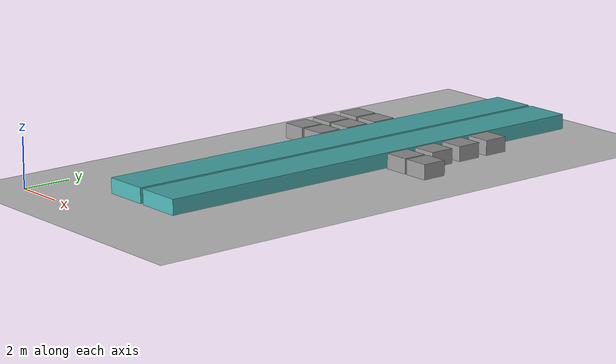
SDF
<sdf version="1.6">
 <world name="default">
  <model name="ground_plane">
   <static>1</static>
   <link name="link">
    <collision name="collision">
     <geometry><plane><normal>0 0 1</normal><size>100 100</size></plane></geometry>
     <surface>
      <contact><collide_bitmask>65535</collide_bitmask></contact>
      <friction><ode><mu>100</mu><mu2>50</mu2></ode></friction>
     </surface>
    </collision>
    <visual name="visual">
     <cast_shadows>0</cast_shadows>
     <geometry><plane><normal>0 0 1</normal><size>100 100</size></plane></geometry>
     <material>
      <script><uri>file://media/materials/scripts/gazebo.material</uri><name>Gazebo/Grey</name></script>
     </material>
    </visual>
   </link>
  </model>
  <model name="Estufa-objetos">
   <link name="link_0_clone_3_clone_clone">
    <inertial>
     <mass>1</mass>
     <inertia>
      <ixx>0.166667</ixx>
      <ixy>0</ixy>
      <ixz>0</ixz>
      <iyy>0.166667</iyy>
      <iyz>0</iyz>
      <izz>0.166667</izz>
     </inertia>
    </inertial>
    <pose>4 6.5 0.5 0 -0 0</pose>
    <visual name="visual">
     <geometry><box><size>1.8 19.5 0.6</size></box></geometry>
     <material>
      <lighting>1</lighting>
      <script><uri>file://media/materials/scripts/gazebo.material</uri><name>Gazebo/Grey</name></script>
      <shader type="vertex"><normal_map>__default__</normal_map></shader>
      <ambient>0.3 0.7 0.7 1</ambient>
      <diffuse>0.7 0.7 0.7 1</diffuse>
      <specular>0.01 0.01 0.01 1</specular>
      <emissive>0 0 0 1</emissive>
     </material>
    </visual>
    <collision name="collision">
     <geometry><box><size>1.8 19.5 0.6</size></box></geometry>
     <surface>
      <friction>
       <ode><mu>1</mu><mu2>1</mu2><fdir1>0 0 0</fdir1><slip1>0</slip1><slip2>0</slip2></ode>
       <torsional>
        <coefficient>1</coefficient>
        <patch_radius>0</patch_radius>
        <surface_radius>0</surface_radius>
        <use_patch_radius>1</use_patch_radius>
        <ode><slip>0</slip></ode>
       </torsional>
      </friction>
      <bounce><restitution_coefficient>0</restitution_coefficient><threshold>1e+06</threshold></bounce>
      <contact>
       <collide_without_contact>0</collide_without_contact>
       <collide_without_contact_bitmask>1</collide_without_contact_bitmask>
       <collide_bitmask>1</collide_bitmask>
       <ode>
        <soft_cfm>0</soft_cfm>
        <soft_erp>0.2</soft_erp>
        <kp>1e+13</kp>
        <kd>1</kd>
        <max_vel>0.01</max_vel>
        <min_depth>0</min_depth>
       </ode>
       <bullet>
        <split_impulse>1</split_impulse>
        <split_impulse_penetration_threshold>-0.01</split_impulse_penetration_threshold>
        <soft_cfm>0</soft_cfm>
        <soft_erp>0.2</soft_erp>
        <kp>1e+13</kp>
        <kd>1</kd>
       </bullet>
      </contact>
     </surface>
    </collision>
   </link>
   <link name="link_0_clone_clone_24">
    <inertial>
     <mass>1</mass>
     <inertia>
      <ixx>0.166667</ixx>
      <ixy>0</ixy>
      <ixz>0</ixz>
      <iyy>0.166667</iyy>
      <iyz>0</iyz>
      <izz>0.166667</izz>
     </inertia>
    </inertial>
    <pose>2.5 7.3 0.5 0 -0 0</pose>
    <visual name="visual">
     <geometry><box><size>1 1 0.6</size></box></geometry>
     <material>
      <lighting>1</lighting>
      <script><uri>file://media/materials/scripts/gazebo.material</uri><name>Gazebo/Grey</name></script>
      <shader type="vertex"><normal_map>__default__</normal_map></shader>
      <ambient>0.3 0.3 0.3 1</ambient>
      <diffuse>0.7 0.7 0.7 1</diffuse>
      <specular>0.01 0.01 0.01 1</specular>
      <emissive>0 0 0 1</emissive>
     </material>
    </visual>
    <collision name="collision">
     <geometry><box><size>1 1 0.6</size></box></geometry>
     <surface>
      <friction>
       <ode><mu>1</mu><mu2>1</mu2><fdir1>0 0 0</fdir1><slip1>0</slip1><slip2>0</slip2></ode>
       <torsional>
        <coefficient>1</coefficient>
        <patch_radius>0</patch_radius>
        <surface_radius>0</surface_radius>
        <use_patch_radius>1</use_patch_radius>
        <ode><slip>0</slip></ode>
       </torsional>
      </friction>
      <bounce><restitution_coefficient>0</restitution_coefficient><threshold>1e+06</threshold></bounce>
      <contact>
       <collide_without_contact>0</collide_without_contact>
       <collide_without_contact_bitmask>1</collide_without_contact_bitmask>
       <collide_bitmask>1</collide_bitmask>
       <ode>
        <soft_cfm>0</soft_cfm>
        <soft_erp>0.2</soft_erp>
        <kp>1e+13</kp>
        <kd>1</kd>
        <max_vel>0.01</max_vel>
        <min_depth>0</min_depth>
       </ode>
       <bullet>
        <split_impulse>1</split_impulse>
        <split_impulse_penetration_threshold>-0.01</split_impulse_penetration_threshold>
        <soft_cfm>0</soft_cfm>
        <soft_erp>0.2</soft_erp>
        <kp>1e+13</kp>
        <kd>1</kd>
       </bullet>
      </contact>
     </surface>
    </collision>
   </link>
   <link name="link_0_clone_clone_25">
    <inertial>
     <mass>1</mass>
     <inertia>
      <ixx>0.166667</ixx>
      <ixy>0</ixy>
      <ixz>0</ixz>
      <iyy>0.166667</iyy>
      <iyz>0</iyz>
      <izz>0.166667</izz>
     </inertia>
    </inertial>
    <pose>1.4 7.3 0.5 0 -0 0</pose>
    <visual name="visual">
     <geometry><box><size>1 1 0.6</size></box></geometry>
     <material>
      <lighting>1</lighting>
      <script><uri>file://media/materials/scripts/gazebo.material</uri><name>Gazebo/Grey</name></script>
      <shader type="vertex"><normal_map>__default__</normal_map></shader>
      <ambient>0.3 0.3 0.3 1</ambient>
      <diffuse>0.7 0.7 0.7 1</diffuse>
      <specular>0.01 0.01 0.01 1</specular>
      <emissive>0 0 0 1</emissive>
     </material>
    </visual>
    <collision name="collision">
     <geometry><box><size>1 1 0.6</size></box></geometry>
     <surface>
      <friction>
       <ode><mu>1</mu><mu2>1</mu2><fdir1>0 0 0</fdir1><slip1>0</slip1><slip2>0</slip2></ode>
       <torsional>
        <coefficient>1</coefficient>
        <patch_radius>0</patch_radius>
        <surface_radius>0</surface_radius>
        <use_patch_radius>1</use_patch_radius>
        <ode><slip>0</slip></ode>
       </torsional>
      </friction>
      <bounce><restitution_coefficient>0</restitution_coefficient><threshold>1e+06</threshold></bounce>
      <contact>
       <collide_without_contact>0</collide_without_contact>
       <collide_without_contact_bitmask>1</collide_without_contact_bitmask>
       <collide_bitmask>1</collide_bitmask>
       <ode>
        <soft_cfm>0</soft_cfm>
        <soft_erp>0.2</soft_erp>
        <kp>1e+13</kp>
        <kd>1</kd>
        <max_vel>0.01</max_vel>
        <min_depth>0</min_depth>
       </ode>
       <bullet>
        <split_impulse>1</split_impulse>
        <split_impulse_penetration_threshold>-0.01</split_impulse_penetration_threshold>
        <soft_cfm>0</soft_cfm>
        <soft_erp>0.2</soft_erp>
        <kp>1e+13</kp>
        <kd>1</kd>
       </bullet>
      </contact>
     </surface>
    </collision>
   </link>
   <link name="link_0_clone_clone_28">
    <inertial>
     <mass>1</mass>
     <inertia>
      <ixx>0.166667</ixx>
      <ixy>0</ixy>
      <ixz>0</ixz>
      <iyy>0.166667</iyy>
      <iyz>0</iyz>
      <izz>0.166667</izz>
     </inertia>
    </inertial>
    <pose>2.5 8.7 0.5 0 -0 0</pose>
    <visual name="visual">
     <geometry><box><size>1 1 0.6</size></box></geometry>
     <material>
      <lighting>1</lighting>
      <script><uri>file://media/materials/scripts/gazebo.material</uri><name>Gazebo/Grey</name></script>
      <shader type="vertex"><normal_map>__default__</normal_map></shader>
      <ambient>0.3 0.3 0.3 1</ambient>
      <diffuse>0.7 0.7 0.7 1</diffuse>
      <specular>0.01 0.01 0.01 1</specular>
      <emissive>0 0 0 1</emissive>
     </material>
    </visual>
    <collision name="collision">
     <geometry><box><size>1 1 0.6</size></box></geometry>
     <surface>
      <friction>
       <ode><mu>1</mu><mu2>1</mu2><fdir1>0 0 0</fdir1><slip1>0</slip1><slip2>0</slip2></ode>
       <torsional>
        <coefficient>1</coefficient>
        <patch_radius>0</patch_radius>
        <surface_radius>0</surface_radius>
        <use_patch_radius>1</use_patch_radius>
        <ode><slip>0</slip></ode>
       </torsional>
      </friction>
      <bounce><restitution_coefficient>0</restitution_coefficient><threshold>1e+06</threshold></bounce>
      <contact>
       <collide_without_contact>0</collide_without_contact>
       <collide_without_contact_bitmask>1</collide_without_contact_bitmask>
       <collide_bitmask>1</collide_bitmask>
       <ode>
        <soft_cfm>0</soft_cfm>
        <soft_erp>0.2</soft_erp>
        <kp>1e+13</kp>
        <kd>1</kd>
        <max_vel>0.01</max_vel>
        <min_depth>0</min_depth>
       </ode>
       <bullet>
        <split_impulse>1</split_impulse>
        <split_impulse_penetration_threshold>-0.01</split_impulse_penetration_threshold>
        <soft_cfm>0</soft_cfm>
        <soft_erp>0.2</soft_erp>
        <kp>1e+13</kp>
        <kd>1</kd>
       </bullet>
      </contact>
     </surface>
    </collision>
   </link>
   <link name="link_0_clone_clone_29">
    <inertial>
     <mass>1</mass>
     <inertia>
      <ixx>0.166667</ixx>
      <ixy>0</ixy>
      <ixz>0</ixz>
      <iyy>0.166667</iyy>
      <iyz>0</iyz>
      <izz>0.166667</izz>
     </inertia>
    </inertial>
    <pose>1.4 8.7 0.5 0 -0 0</pose>
    <visual name="visual">
     <geometry><box><size>1 1 0.6</size></box></geometry>
     <material>
      <lighting>1</lighting>
      <script><uri>file://media/materials/scripts/gazebo.material</uri><name>Gazebo/Grey</name></script>
      <shader type="vertex"><normal_map>__default__</normal_map></shader>
      <ambient>0.3 0.3 0.3 1</ambient>
      <diffuse>0.7 0.7 0.7 1</diffuse>
      <specular>0.01 0.01 0.01 1</specular>
      <emissive>0 0 0 1</emissive>
     </material>
    </visual>
    <collision name="collision">
     <geometry><box><size>1 1 0.6</size></box></geometry>
     <surface>
      <friction>
       <ode><mu>1</mu><mu2>1</mu2><fdir1>0 0 0</fdir1><slip1>0</slip1><slip2>0</slip2></ode>
       <torsional>
        <coefficient>1</coefficient>
        <patch_radius>0</patch_radius>
        <surface_radius>0</surface_radius>
        <use_patch_radius>1</use_patch_radius>
        <ode><slip>0</slip></ode>
       </torsional>
      </friction>
      <bounce><restitution_coefficient>0</restitution_coefficient><threshold>1e+06</threshold></bounce>
      <contact>
       <collide_without_contact>0</collide_without_contact>
       <collide_without_contact_bitmask>1</collide_without_contact_bitmask>
       <collide_bitmask>1</collide_bitmask>
       <ode>
        <soft_cfm>0</soft_cfm>
        <soft_erp>0.2</soft_erp>
        <kp>1e+13</kp>
        <kd>1</kd>
        <max_vel>0.01</max_vel>
        <min_depth>0</min_depth>
       </ode>
       <bullet>
        <split_impulse>1</split_impulse>
        <split_impulse_penetration_threshold>-0.01</split_impulse_penetration_threshold>
        <soft_cfm>0</soft_cfm>
        <soft_erp>0.2</soft_erp>
        <kp>1e+13</kp>
        <kd>1</kd>
       </bullet>
      </contact>
     </surface>
    </collision>
   </link>
   <link name="link_0_clone_clone_32">
    <inertial>
     <mass>1</mass>
     <inertia>
      <ixx>0.166667</ixx>
      <ixy>0</ixy>
      <ixz>0</ixz>
      <iyy>0.166667</iyy>
      <iyz>0</iyz>
      <izz>0.166667</izz>
     </inertia>
    </inertial>
    <pose>2.5 10.1 0.5 0 -0 0</pose>
    <visual name="visual">
     <geometry><box><size>1 1 0.6</size></box></geometry>
     <material>
      <lighting>1</lighting>
      <script><uri>file://media/materials/scripts/gazebo.material</uri><name>Gazebo/Grey</name></script>
      <shader type="vertex"><normal_map>__default__</normal_map></shader>
      <ambient>0.3 0.3 0.3 1</ambient>
      <diffuse>0.7 0.7 0.7 1</diffuse>
      <specular>0.01 0.01 0.01 1</specular>
      <emissive>0 0 0 1</emissive>
     </material>
    </visual>
    <collision name="collision">
     <geometry><box><size>1 1 0.6</size></box></geometry>
     <surface>
      <friction>
       <ode><mu>1</mu><mu2>1</mu2><fdir1>0 0 0</fdir1><slip1>0</slip1><slip2>0</slip2></ode>
       <torsional>
        <coefficient>1</coefficient>
        <patch_radius>0</patch_radius>
        <surface_radius>0</surface_radius>
        <use_patch_radius>1</use_patch_radius>
        <ode><slip>0</slip></ode>
       </torsional>
      </friction>
      <bounce><restitution_coefficient>0</restitution_coefficient><threshold>1e+06</threshold></bounce>
      <contact>
       <collide_without_contact>0</collide_without_contact>
       <collide_without_contact_bitmask>1</collide_without_contact_bitmask>
       <collide_bitmask>1</collide_bitmask>
       <ode>
        <soft_cfm>0</soft_cfm>
        <soft_erp>0.2</soft_erp>
        <kp>1e+13</kp>
        <kd>1</kd>
        <max_vel>0.01</max_vel>
        <min_depth>0</min_depth>
       </ode>
       <bullet>
        <split_impulse>1</split_impulse>
        <split_impulse_penetration_threshold>-0.01</split_impulse_penetration_threshold>
        <soft_cfm>0</soft_cfm>
        <soft_erp>0.2</soft_erp>
        <kp>1e+13</kp>
        <kd>1</kd>
       </bullet>
      </contact>
     </surface>
    </collision>
   </link>
   <link name="link_0_clone_clone_33">
    <inertial>
     <mass>1</mass>
     <inertia>
      <ixx>0.166667</ixx>
      <ixy>0</ixy>
      <ixz>0</ixz>
      <iyy>0.166667</iyy>
      <iyz>0</iyz>
      <izz>0.166667</izz>
     </inertia>
    </inertial>
    <pose>1.4 10.1 0.5 0 -0 0</pose>
    <visual name="visual">
     <geometry><box><size>1 1 0.6</size></box></geometry>
     <material>
      <lighting>1</lighting>
      <script><uri>file://media/materials/scripts/gazebo.material</uri><name>Gazebo/Grey</name></script>
      <shader type="vertex"><normal_map>__default__</normal_map></shader>
      <ambient>0.3 0.3 0.3 1</ambient>
      <diffuse>0.7 0.7 0.7 1</diffuse>
      <specular>0.01 0.01 0.01 1</specular>
      <emissive>0 0 0 1</emissive>
     </material>
    </visual>
    <collision name="collision">
     <geometry><box><size>1 1 0.6</size></box></geometry>
     <surface>
      <friction>
       <ode><mu>1</mu><mu2>1</mu2><fdir1>0 0 0</fdir1><slip1>0</slip1><slip2>0</slip2></ode>
       <torsional>
        <coefficient>1</coefficient>
        <patch_radius>0</patch_radius>
        <surface_radius>0</surface_radius>
        <use_patch_radius>1</use_patch_radius>
        <ode><slip>0</slip></ode>
       </torsional>
      </friction>
      <bounce><restitution_coefficient>0</restitution_coefficient><threshold>1e+06</threshold></bounce>
      <contact>
       <collide_without_contact>0</collide_without_contact>
       <collide_without_contact_bitmask>1</collide_without_contact_bitmask>
       <collide_bitmask>1</collide_bitmask>
       <ode>
        <soft_cfm>0</soft_cfm>
        <soft_erp>0.2</soft_erp>
        <kp>1e+13</kp>
        <kd>1</kd>
        <max_vel>0.01</max_vel>
        <min_depth>0</min_depth>
       </ode>
       <bullet>
        <split_impulse>1</split_impulse>
        <split_impulse_penetration_threshold>-0.01</split_impulse_penetration_threshold>
        <soft_cfm>0</soft_cfm>
        <soft_erp>0.2</soft_erp>
        <kp>1e+13</kp>
        <kd>1</kd>
       </bullet>
      </contact>
     </surface>
    </collision>
   </link>
   <static>1</static>
   <pose>0.033468 4.9867 0 0 -0 0</pose>
  </model>
  <model name="Estufa-objetos_0">
   <link name="link_0_clone_3_clone">
    <inertial>
     <mass>1</mass>
     <inertia>
      <ixx>0.166667</ixx>
      <ixy>0</ixy>
      <ixz>0</ixz>
      <iyy>0.166667</iyy>
      <iyz>0</iyz>
      <izz>0.166667</izz>
     </inertia>
    </inertial>
    <pose>-4 6.5 0.5 0 -0 0</pose>
    <visual name="visual">
     <geometry><box><size>1.8 19.5 0.6</size></box></geometry>
     <material>
      <lighting>1</lighting>
      <script><uri>file://media/materials/scripts/gazebo.material</uri><name>Gazebo/Grey</name></script>
      <shader type="vertex"><normal_map>__default__</normal_map></shader>
      <ambient>0.3 0.7 0.7 1</ambient>
      <diffuse>0.7 0.7 0.7 1</diffuse>
      <specular>0.01 0.01 0.01 1</specular>
      <emissive>0 0 0 1</emissive>
     </material>
    </visual>
    <collision name="collision">
     <geometry><box><size>1.8 19.5 0.6</size></box></geometry>
     <surface>
      <friction>
       <ode><mu>1</mu><mu2>1</mu2><fdir1>0 0 0</fdir1><slip1>0</slip1><slip2>0</slip2></ode>
       <torsional>
        <coefficient>1</coefficient>
        <patch_radius>0</patch_radius>
        <surface_radius>0</surface_radius>
        <use_patch_radius>1</use_patch_radius>
        <ode><slip>0</slip></ode>
       </torsional>
      </friction>
      <bounce><restitution_coefficient>0</restitution_coefficient><threshold>1e+06</threshold></bounce>
      <contact>
       <collide_without_contact>0</collide_without_contact>
       <collide_without_contact_bitmask>1</collide_without_contact_bitmask>
       <collide_bitmask>1</collide_bitmask>
       <ode>
        <soft_cfm>0</soft_cfm>
        <soft_erp>0.2</soft_erp>
        <kp>1e+13</kp>
        <kd>1</kd>
        <max_vel>0.01</max_vel>
        <min_depth>0</min_depth>
       </ode>
       <bullet>
        <split_impulse>1</split_impulse>
        <split_impulse_penetration_threshold>-0.01</split_impulse_penetration_threshold>
        <soft_cfm>0</soft_cfm>
        <soft_erp>0.2</soft_erp>
        <kp>1e+13</kp>
        <kd>1</kd>
       </bullet>
      </contact>
     </surface>
    </collision>
   </link>
   <link name="link_0_clone_clone_26">
    <inertial>
     <mass>1</mass>
     <inertia>
      <ixx>0.166667</ixx>
      <ixy>0</ixy>
      <ixz>0</ixz>
      <iyy>0.166667</iyy>
      <iyz>0</iyz>
      <izz>0.166667</izz>
     </inertia>
    </inertial>
    <pose>-1.4 7.3 0.5 0 -0 0</pose>
    <visual name="visual">
     <geometry><box><size>1 1 0.6</size></box></geometry>
     <material>
      <lighting>1</lighting>
      <script><uri>file://media/materials/scripts/gazebo.material</uri><name>Gazebo/Grey</name></script>
      <shader type="vertex"><normal_map>__default__</normal_map></shader>
      <ambient>0.3 0.3 0.3 1</ambient>
      <diffuse>0.7 0.7 0.7 1</diffuse>
      <specular>0.01 0.01 0.01 1</specular>
      <emissive>0 0 0 1</emissive>
     </material>
    </visual>
    <collision name="collision">
     <geometry><box><size>1 1 0.6</size></box></geometry>
     <surface>
      <friction>
       <ode><mu>1</mu><mu2>1</mu2><fdir1>0 0 0</fdir1><slip1>0</slip1><slip2>0</slip2></ode>
       <torsional>
        <coefficient>1</coefficient>
        <patch_radius>0</patch_radius>
        <surface_radius>0</surface_radius>
        <use_patch_radius>1</use_patch_radius>
        <ode><slip>0</slip></ode>
       </torsional>
      </friction>
      <bounce><restitution_coefficient>0</restitution_coefficient><threshold>1e+06</threshold></bounce>
      <contact>
       <collide_without_contact>0</collide_without_contact>
       <collide_without_contact_bitmask>1</collide_without_contact_bitmask>
       <collide_bitmask>1</collide_bitmask>
       <ode>
        <soft_cfm>0</soft_cfm>
        <soft_erp>0.2</soft_erp>
        <kp>1e+13</kp>
        <kd>1</kd>
        <max_vel>0.01</max_vel>
        <min_depth>0</min_depth>
       </ode>
       <bullet>
        <split_impulse>1</split_impulse>
        <split_impulse_penetration_threshold>-0.01</split_impulse_penetration_threshold>
        <soft_cfm>0</soft_cfm>
        <soft_erp>0.2</soft_erp>
        <kp>1e+13</kp>
        <kd>1</kd>
       </bullet>
      </contact>
     </surface>
    </collision>
   </link>
   <link name="link_0_clone_clone_27">
    <inertial>
     <mass>1</mass>
     <inertia>
      <ixx>0.166667</ixx>
      <ixy>0</ixy>
      <ixz>0</ixz>
      <iyy>0.166667</iyy>
      <iyz>0</iyz>
      <izz>0.166667</izz>
     </inertia>
    </inertial>
    <pose>-2.5 7.3 0.5 0 -0 0</pose>
    <visual name="visual">
     <geometry><box><size>1 1 0.6</size></box></geometry>
     <material>
      <lighting>1</lighting>
      <script><uri>file://media/materials/scripts/gazebo.material</uri><name>Gazebo/Grey</name></script>
      <shader type="vertex"><normal_map>__default__</normal_map></shader>
      <ambient>0.3 0.3 0.3 1</ambient>
      <diffuse>0.7 0.7 0.7 1</diffuse>
      <specular>0.01 0.01 0.01 1</specular>
      <emissive>0 0 0 1</emissive>
     </material>
    </visual>
    <collision name="collision">
     <geometry><box><size>1 1 0.6</size></box></geometry>
     <surface>
      <friction>
       <ode><mu>1</mu><mu2>1</mu2><fdir1>0 0 0</fdir1><slip1>0</slip1><slip2>0</slip2></ode>
       <torsional>
        <coefficient>1</coefficient>
        <patch_radius>0</patch_radius>
        <surface_radius>0</surface_radius>
        <use_patch_radius>1</use_patch_radius>
        <ode><slip>0</slip></ode>
       </torsional>
      </friction>
      <bounce><restitution_coefficient>0</restitution_coefficient><threshold>1e+06</threshold></bounce>
      <contact>
       <collide_without_contact>0</collide_without_contact>
       <collide_without_contact_bitmask>1</collide_without_contact_bitmask>
       <collide_bitmask>1</collide_bitmask>
       <ode>
        <soft_cfm>0</soft_cfm>
        <soft_erp>0.2</soft_erp>
        <kp>1e+13</kp>
        <kd>1</kd>
        <max_vel>0.01</max_vel>
        <min_depth>0</min_depth>
       </ode>
       <bullet>
        <split_impulse>1</split_impulse>
        <split_impulse_penetration_threshold>-0.01</split_impulse_penetration_threshold>
        <soft_cfm>0</soft_cfm>
        <soft_erp>0.2</soft_erp>
        <kp>1e+13</kp>
        <kd>1</kd>
       </bullet>
      </contact>
     </surface>
    </collision>
   </link>
   <link name="link_0_clone_clone_31">
    <inertial>
     <mass>1</mass>
     <inertia>
      <ixx>0.166667</ixx>
      <ixy>0</ixy>
      <ixz>0</ixz>
      <iyy>0.166667</iyy>
      <iyz>0</iyz>
      <izz>0.166667</izz>
     </inertia>
    </inertial>
    <pose>-2.5 8.7 0.5 0 -0 0</pose>
    <visual name="visual">
     <geometry><box><size>1 1 0.6</size></box></geometry>
     <material>
      <lighting>1</lighting>
      <script><uri>file://media/materials/scripts/gazebo.material</uri><name>Gazebo/Grey</name></script>
      <shader type="vertex"><normal_map>__default__</normal_map></shader>
      <ambient>0.3 0.3 0.3 1</ambient>
      <diffuse>0.7 0.7 0.7 1</diffuse>
      <specular>0.01 0.01 0.01 1</specular>
      <emissive>0 0 0 1</emissive>
     </material>
    </visual>
    <collision name="collision">
     <geometry><box><size>1 1 0.6</size></box></geometry>
     <surface>
      <friction>
       <ode><mu>1</mu><mu2>1</mu2><fdir1>0 0 0</fdir1><slip1>0</slip1><slip2>0</slip2></ode>
       <torsional>
        <coefficient>1</coefficient>
        <patch_radius>0</patch_radius>
        <surface_radius>0</surface_radius>
        <use_patch_radius>1</use_patch_radius>
        <ode><slip>0</slip></ode>
       </torsional>
      </friction>
      <bounce><restitution_coefficient>0</restitution_coefficient><threshold>1e+06</threshold></bounce>
      <contact>
       <collide_without_contact>0</collide_without_contact>
       <collide_without_contact_bitmask>1</collide_without_contact_bitmask>
       <collide_bitmask>1</collide_bitmask>
       <ode>
        <soft_cfm>0</soft_cfm>
        <soft_erp>0.2</soft_erp>
        <kp>1e+13</kp>
        <kd>1</kd>
        <max_vel>0.01</max_vel>
        <min_depth>0</min_depth>
       </ode>
       <bullet>
        <split_impulse>1</split_impulse>
        <split_impulse_penetration_threshold>-0.01</split_impulse_penetration_threshold>
        <soft_cfm>0</soft_cfm>
        <soft_erp>0.2</soft_erp>
        <kp>1e+13</kp>
        <kd>1</kd>
       </bullet>
      </contact>
     </surface>
    </collision>
   </link>
   <link name="link_0_clone_clone_35">
    <inertial>
     <mass>1</mass>
     <inertia>
      <ixx>0.166667</ixx>
      <ixy>0</ixy>
      <ixz>0</ixz>
      <iyy>0.166667</iyy>
      <iyz>0</iyz>
      <izz>0.166667</izz>
     </inertia>
    </inertial>
    <pose>-2.5 10.1 0.5 0 -0 0</pose>
    <visual name="visual">
     <geometry><box><size>1 1 0.6</size></box></geometry>
     <material>
      <lighting>1</lighting>
      <script><uri>file://media/materials/scripts/gazebo.material</uri><name>Gazebo/Grey</name></script>
      <shader type="vertex"><normal_map>__default__</normal_map></shader>
      <ambient>0.3 0.3 0.3 1</ambient>
      <diffuse>0.7 0.7 0.7 1</diffuse>
      <specular>0.01 0.01 0.01 1</specular>
      <emissive>0 0 0 1</emissive>
     </material>
    </visual>
    <collision name="collision">
     <geometry><box><size>1 1 0.6</size></box></geometry>
     <surface>
      <friction>
       <ode><mu>1</mu><mu2>1</mu2><fdir1>0 0 0</fdir1><slip1>0</slip1><slip2>0</slip2></ode>
       <torsional>
        <coefficient>1</coefficient>
        <patch_radius>0</patch_radius>
        <surface_radius>0</surface_radius>
        <use_patch_radius>1</use_patch_radius>
        <ode><slip>0</slip></ode>
       </torsional>
      </friction>
      <bounce><restitution_coefficient>0</restitution_coefficient><threshold>1e+06</threshold></bounce>
      <contact>
       <collide_without_contact>0</collide_without_contact>
       <collide_without_contact_bitmask>1</collide_without_contact_bitmask>
       <collide_bitmask>1</collide_bitmask>
       <ode>
        <soft_cfm>0</soft_cfm>
        <soft_erp>0.2</soft_erp>
        <kp>1e+13</kp>
        <kd>1</kd>
        <max_vel>0.01</max_vel>
        <min_depth>0</min_depth>
       </ode>
       <bullet>
        <split_impulse>1</split_impulse>
        <split_impulse_penetration_threshold>-0.01</split_impulse_penetration_threshold>
        <soft_cfm>0</soft_cfm>
        <soft_erp>0.2</soft_erp>
        <kp>1e+13</kp>
        <kd>1</kd>
       </bullet>
      </contact>
     </surface>
    </collision>
   </link>
   <link name="link_0_clone_clone_39">
    <inertial>
     <mass>1</mass>
     <inertia>
      <ixx>0.166667</ixx>
      <ixy>0</ixy>
      <ixz>0</ixz>
      <iyy>0.166667</iyy>
      <iyz>0</iyz>
      <izz>0.166667</izz>
     </inertia>
    </inertial>
    <pose>-2.5 11.5 0.5 0 -0 0</pose>
    <visual name="visual">
     <geometry><box><size>1 1 0.6</size></box></geometry>
     <material>
      <lighting>1</lighting>
      <script><uri>file://media/materials/scripts/gazebo.material</uri><name>Gazebo/Grey</name></script>
      <shader type="vertex"><normal_map>__default__</normal_map></shader>
      <ambient>0.3 0.3 0.3 1</ambient>
      <diffuse>0.7 0.7 0.7 1</diffuse>
      <specular>0.01 0.01 0.01 1</specular>
      <emissive>0 0 0 1</emissive>
     </material>
    </visual>
    <collision name="collision">
     <geometry><box><size>1 1 0.6</size></box></geometry>
     <surface>
      <friction>
       <ode><mu>1</mu><mu2>1</mu2><fdir1>0 0 0</fdir1><slip1>0</slip1><slip2>0</slip2></ode>
       <torsional>
        <coefficient>1</coefficient>
        <patch_radius>0</patch_radius>
        <surface_radius>0</surface_radius>
        <use_patch_radius>1</use_patch_radius>
        <ode><slip>0</slip></ode>
       </torsional>
      </friction>
      <bounce><restitution_coefficient>0</restitution_coefficient><threshold>1e+06</threshold></bounce>
      <contact>
       <collide_without_contact>0</collide_without_contact>
       <collide_without_contact_bitmask>1</collide_without_contact_bitmask>
       <collide_bitmask>1</collide_bitmask>
       <ode>
        <soft_cfm>0</soft_cfm>
        <soft_erp>0.2</soft_erp>
        <kp>1e+13</kp>
        <kd>1</kd>
        <max_vel>0.01</max_vel>
        <min_depth>0</min_depth>
       </ode>
       <bullet>
        <split_impulse>1</split_impulse>
        <split_impulse_penetration_threshold>-0.01</split_impulse_penetration_threshold>
        <soft_cfm>0</soft_cfm>
        <soft_erp>0.2</soft_erp>
        <kp>1e+13</kp>
        <kd>1</kd>
       </bullet>
      </contact>
     </surface>
    </collision>
   </link>
   <static>1</static>
   <pose>10.0022 4.97644 0 0 -0 0</pose>
  </model>
 </world>
</sdf>
